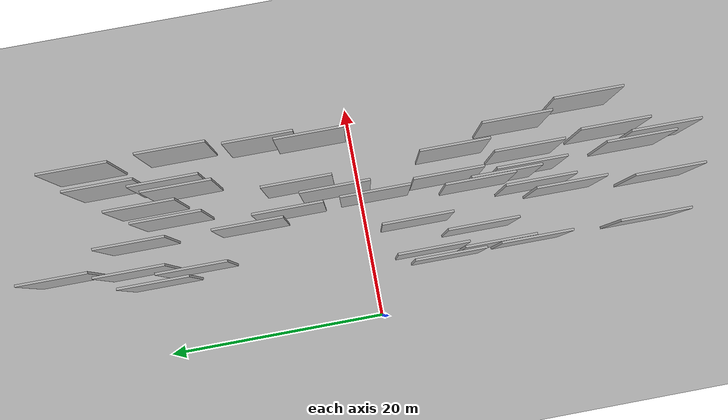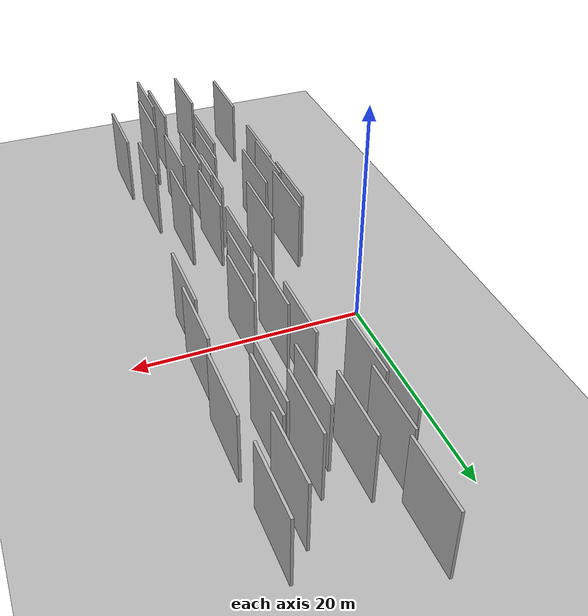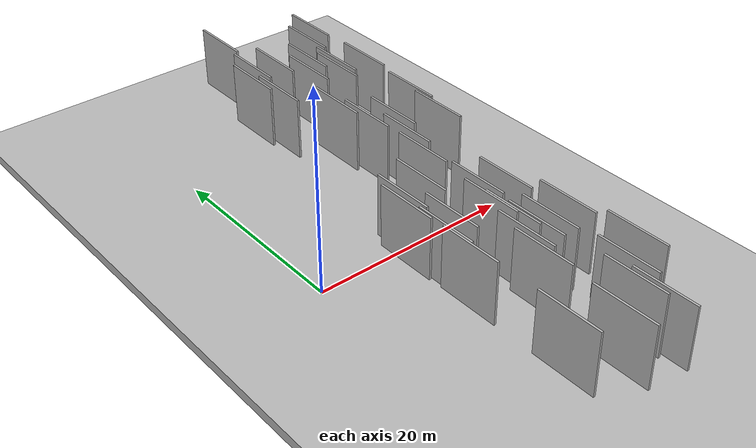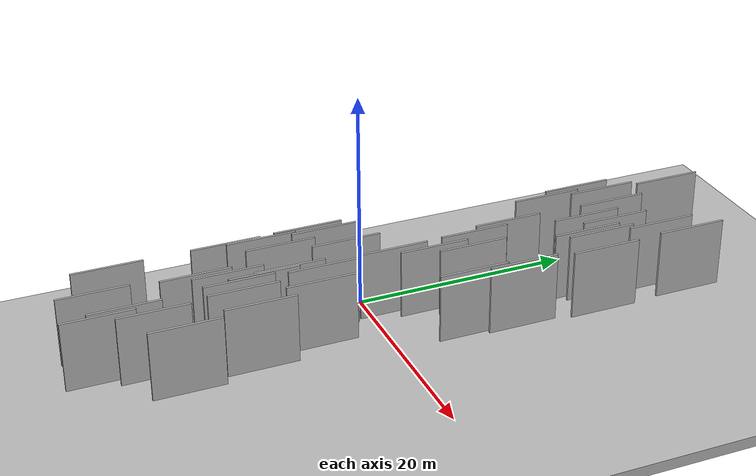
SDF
<?xml version="1.0" encoding="utf-8"?>

<sdf version="1.6">

   <world name="default">

      <gui fullscreen="0">

         <camera name="user_camera">

            <pose>-15 0 4.57585 0 0 0</pose>

            <view_controller>orbit</view_controller>

         </camera>

      </gui>

      <scene>

         <sky>

           <clouds>

             <speed>12</speed>

           </clouds>

         </sky>

         <ambient>0.4 0.4 0.4 1</ambient>

         <background>0.7 0.7 0.7 1</background>

         <shadows>1</shadows>

      </scene>

      <gravity>0 0 -9.8066</gravity>

      <magnetic_field>6e-06 2.3e-05 -4.2e-05</magnetic_field>

      <physics default="0" name="default_physics" type="ode">

         <ode>

            <solver>

               <type>quick</type>

               <iters>10</iters>

               <sor>1.0</sor>

               <use_dynamic_moi_rescaling>0</use_dynamic_moi_rescaling>

            </solver>

            <constraints>

               <cfm>0</cfm>

               <erp>0.2</erp>

               <contact_max_correcting_vel>100</contact_max_correcting_vel>

               <contact_surface_layer>0.001</contact_surface_layer>

            </constraints>

         </ode>

         <max_step_size>0.004</max_step_size>

         <real_time_factor>1</real_time_factor>

         <real_time_update_rate>250</real_time_update_rate>

      </physics>

      <light name="sun" type="directional">

         <cast_shadows>1</cast_shadows>

         <pose>0 0 10 0 0 0</pose>

         <diffuse>0.8 0.8 0.8 1</diffuse>

         <specular>0.2 0.2 0.2 1</specular>

         <attenuation>

            <range>1000</range>

            <constant>0.9</constant>

            <linear>0.01</linear>

            <quadratic>0.001</quadratic>

         </attenuation>

         <direction>-0.5 0.1 -0.9</direction>

      </light>

      <include>

         <name>ground_plane_1</name>

         <uri>model://HANNAS_ground_plane</uri>

         <pose>0 0 0  0 0 0</pose>

      </include>

      <include>

         <name>ground_plane_2</name>

         <uri>model://HANNAS_ground_plane</uri>

         <pose>100 0 0  0 0 0</pose>

      </include>

      <model name="HANNAS_wall_1">

         <static>1</static>

         <pose frame="">15.1076 -20.1467 5.0 0.000000 0.000000 1.570796</pose>

         <link name="link">

            <pose frame="">0 0 3.00 0 0 0</pose>

            <collision name="collision">

               <geometry>

                  <box>

                     <size>6.00 0.2 6.00</size>

                  </box>

               </geometry>

               <max_contacts>10</max_contacts>

               <surface>

                  <contact>

                     <ode/>

                  </contact>

                  <bounce/>

                  <friction>

                     <torsional>

                        <ode/>

                     </torsional>

                     <ode/>

                  </friction>

               </surface>

            </collision>

            <visual name="visual">

               <cast_shadows>0</cast_shadows>

               <geometry>

                  <box>

                     <size>6.00 0.2 6.00</size>

                  </box>

               </geometry>

               <material>

                  <script>

                     <uri>model://HANNAS_wall/materials/scripts</uri>

                     <uri>model://HANNAS_wall/materials/textures</uri>

                     <name>vrc/HANNAS_wall</name>

                  </script>

               </material>

            </visual>

            <self_collide>0</self_collide>

            <enable_wind>0</enable_wind>

            <kinematic>0</kinematic>

         </link>

      </model>

      <model name="HANNAS_wall_2">

         <static>1</static>

         <pose frame="">12.1999 5.2077 5.0 0.000000 0.000000 1.570796</pose>

         <link name="link">

            <pose frame="">0 0 3.00 0 0 0</pose>

            <collision name="collision">

               <geometry>

                  <box>

                     <size>6.00 0.2 6.00</size>

                  </box>

               </geometry>

               <max_contacts>10</max_contacts>

               <surface>

                  <contact>

                     <ode/>

                  </contact>

                  <bounce/>

                  <friction>

                     <torsional>

                        <ode/>

                     </torsional>

                     <ode/>

                  </friction>

               </surface>

            </collision>

            <visual name="visual">

               <cast_shadows>0</cast_shadows>

               <geometry>

                  <box>

                     <size>6.00 0.2 6.00</size>

                  </box>

               </geometry>

               <material>

                  <script>

                     <uri>model://HANNAS_wall/materials/scripts</uri>

                     <uri>model://HANNAS_wall/materials/textures</uri>

                     <name>vrc/HANNAS_wall</name>

                  </script>

               </material>

            </visual>

            <self_collide>0</self_collide>

            <enable_wind>0</enable_wind>

            <kinematic>0</kinematic>

         </link>

      </model>

      <model name="HANNAS_wall_3">

         <static>1</static>

         <pose frame="">10.1871 -14.3013 5.0 0.000000 0.000000 1.570796</pose>

         <link name="link">

            <pose frame="">0 0 3.00 0 0 0</pose>

            <collision name="collision">

               <geometry>

                  <box>

                     <size>6.00 0.2 6.00</size>

                  </box>

               </geometry>

               <max_contacts>10</max_contacts>

               <surface>

                  <contact>

                     <ode/>

                  </contact>

                  <bounce/>

                  <friction>

                     <torsional>

                        <ode/>

                     </torsional>

                     <ode/>

                  </friction>

               </surface>

            </collision>

            <visual name="visual">

               <cast_shadows>0</cast_shadows>

               <geometry>

                  <box>

                     <size>6.00 0.2 6.00</size>

                  </box>

               </geometry>

               <material>

                  <script>

                     <uri>model://HANNAS_wall/materials/scripts</uri>

                     <uri>model://HANNAS_wall/materials/textures</uri>

                     <name>vrc/HANNAS_wall</name>

                  </script>

               </material>

            </visual>

            <self_collide>0</self_collide>

            <enable_wind>0</enable_wind>

            <kinematic>0</kinematic>

         </link>

      </model>

      <model name="HANNAS_wall_4">

         <static>1</static>

         <pose frame="">16.6291 23.3080 5.0 0.000000 0.000000 1.570796</pose>

         <link name="link">

            <pose frame="">0 0 3.00 0 0 0</pose>

            <collision name="collision">

               <geometry>

                  <box>

                     <size>6.00 0.2 6.00</size>

                  </box>

               </geometry>

               <max_contacts>10</max_contacts>

               <surface>

                  <contact>

                     <ode/>

                  </contact>

                  <bounce/>

                  <friction>

                     <torsional>

                        <ode/>

                     </torsional>

                     <ode/>

                  </friction>

               </surface>

            </collision>

            <visual name="visual">

               <cast_shadows>0</cast_shadows>

               <geometry>

                  <box>

                     <size>6.00 0.2 6.00</size>

                  </box>

               </geometry>

               <material>

                  <script>

                     <uri>model://HANNAS_wall/materials/scripts</uri>

                     <uri>model://HANNAS_wall/materials/textures</uri>

                     <name>vrc/HANNAS_wall</name>

                  </script>

               </material>

            </visual>

            <self_collide>0</self_collide>

            <enable_wind>0</enable_wind>

            <kinematic>0</kinematic>

         </link>

      </model>

      <model name="HANNAS_wall_5">

         <static>1</static>

         <pose frame="">12.1281 -21.8119 5.0 0.000000 0.000000 1.570796</pose>

         <link name="link">

            <pose frame="">0 0 3.00 0 0 0</pose>

            <collision name="collision">

               <geometry>

                  <box>

                     <size>6.00 0.2 6.00</size>

                  </box>

               </geometry>

               <max_contacts>10</max_contacts>

               <surface>

                  <contact>

                     <ode/>

                  </contact>

                  <bounce/>

                  <friction>

                     <torsional>

                        <ode/>

                     </torsional>

                     <ode/>

                  </friction>

               </surface>

            </collision>

            <visual name="visual">

               <cast_shadows>0</cast_shadows>

               <geometry>

                  <box>

                     <size>6.00 0.2 6.00</size>

                  </box>

               </geometry>

               <material>

                  <script>

                     <uri>model://HANNAS_wall/materials/scripts</uri>

                     <uri>model://HANNAS_wall/materials/textures</uri>

                     <name>vrc/HANNAS_wall</name>

                  </script>

               </material>

            </visual>

            <self_collide>0</self_collide>

            <enable_wind>0</enable_wind>

            <kinematic>0</kinematic>

         </link>

      </model>

      <model name="HANNAS_wall_6">

         <static>1</static>

         <pose frame="">10.2048 -1.0611 5.0 0.000000 0.000000 1.570796</pose>

         <link name="link">

            <pose frame="">0 0 3.00 0 0 0</pose>

            <collision name="collision">

               <geometry>

                  <box>

                     <size>6.00 0.2 6.00</size>

                  </box>

               </geometry>

               <max_contacts>10</max_contacts>

               <surface>

                  <contact>

                     <ode/>

                  </contact>

                  <bounce/>

                  <friction>

                     <torsional>

                        <ode/>

                     </torsional>

                     <ode/>

                  </friction>

               </surface>

            </collision>

            <visual name="visual">

               <cast_shadows>0</cast_shadows>

               <geometry>

                  <box>

                     <size>6.00 0.2 6.00</size>

                  </box>

               </geometry>

               <material>

                  <script>

                     <uri>model://HANNAS_wall/materials/scripts</uri>

                     <uri>model://HANNAS_wall/materials/textures</uri>

                     <name>vrc/HANNAS_wall</name>

                  </script>

               </material>

            </visual>

            <self_collide>0</self_collide>

            <enable_wind>0</enable_wind>

            <kinematic>0</kinematic>

         </link>

      </model>

      <model name="HANNAS_wall_7">

         <static>1</static>

         <pose frame="">3.9544 -6.2248 5.0 0.000000 0.000000 1.570796</pose>

         <link name="link">

            <pose frame="">0 0 3.00 0 0 0</pose>

            <collision name="collision">

               <geometry>

                  <box>

                     <size>6.00 0.2 6.00</size>

                  </box>

               </geometry>

               <max_contacts>10</max_contacts>

               <surface>

                  <contact>

                     <ode/>

                  </contact>

                  <bounce/>

                  <friction>

                     <torsional>

                        <ode/>

                     </torsional>

                     <ode/>

                  </friction>

               </surface>

            </collision>

            <visual name="visual">

               <cast_shadows>0</cast_shadows>

               <geometry>

                  <box>

                     <size>6.00 0.2 6.00</size>

                  </box>

               </geometry>

               <material>

                  <script>

                     <uri>model://HANNAS_wall/materials/scripts</uri>

                     <uri>model://HANNAS_wall/materials/textures</uri>

                     <name>vrc/HANNAS_wall</name>

                  </script>

               </material>

            </visual>

            <self_collide>0</self_collide>

            <enable_wind>0</enable_wind>

            <kinematic>0</kinematic>

         </link>

      </model>

      <model name="HANNAS_wall_8">

         <static>1</static>

         <pose frame="">14.2728 16.0527 5.0 0.000000 0.000000 1.570796</pose>

         <link name="link">

            <pose frame="">0 0 3.00 0 0 0</pose>

            <collision name="collision">

               <geometry>

                  <box>

                     <size>6.00 0.2 6.00</size>

                  </box>

               </geometry>

               <max_contacts>10</max_contacts>

               <surface>

                  <contact>

                     <ode/>

                  </contact>

                  <bounce/>

                  <friction>

                     <torsional>

                        <ode/>

                     </torsional>

                     <ode/>

                  </friction>

               </surface>

            </collision>

            <visual name="visual">

               <cast_shadows>0</cast_shadows>

               <geometry>

                  <box>

                     <size>6.00 0.2 6.00</size>

                  </box>

               </geometry>

               <material>

                  <script>

                     <uri>model://HANNAS_wall/materials/scripts</uri>

                     <uri>model://HANNAS_wall/materials/textures</uri>

                     <name>vrc/HANNAS_wall</name>

                  </script>

               </material>

            </visual>

            <self_collide>0</self_collide>

            <enable_wind>0</enable_wind>

            <kinematic>0</kinematic>

         </link>

      </model>

      <model name="HANNAS_wall_9">

         <static>1</static>

         <pose frame="">4.6797 -4.9293 5.0 0.000000 0.000000 1.570796</pose>

         <link name="link">

            <pose frame="">0 0 3.00 0 0 0</pose>

            <collision name="collision">

               <geometry>

                  <box>

                     <size>6.00 0.2 6.00</size>

                  </box>

               </geometry>

               <max_contacts>10</max_contacts>

               <surface>

                  <contact>

                     <ode/>

                  </contact>

                  <bounce/>

                  <friction>

                     <torsional>

                        <ode/>

                     </torsional>

                     <ode/>

                  </friction>

               </surface>

            </collision>

            <visual name="visual">

               <cast_shadows>0</cast_shadows>

               <geometry>

                  <box>

                     <size>6.00 0.2 6.00</size>

                  </box>

               </geometry>

               <material>

                  <script>

                     <uri>model://HANNAS_wall/materials/scripts</uri>

                     <uri>model://HANNAS_wall/materials/textures</uri>

                     <name>vrc/HANNAS_wall</name>

                  </script>

               </material>

            </visual>

            <self_collide>0</self_collide>

            <enable_wind>0</enable_wind>

            <kinematic>0</kinematic>

         </link>

      </model>

      <model name="HANNAS_wall_10">

         <static>1</static>

         <pose frame="">14.1729 -13.8477 5.0 0.000000 0.000000 1.570796</pose>

         <link name="link">

            <pose frame="">0 0 3.00 0 0 0</pose>

            <collision name="collision">

               <geometry>

                  <box>

                     <size>6.00 0.2 6.00</size>

                  </box>

               </geometry>

               <max_contacts>10</max_contacts>

               <surface>

                  <contact>

                     <ode/>

                  </contact>

                  <bounce/>

                  <friction>

                     <torsional>

                        <ode/>

                     </torsional>

                     <ode/>

                  </friction>

               </surface>

            </collision>

            <visual name="visual">

               <cast_shadows>0</cast_shadows>

               <geometry>

                  <box>

                     <size>6.00 0.2 6.00</size>

                  </box>

               </geometry>

               <material>

                  <script>

                     <uri>model://HANNAS_wall/materials/scripts</uri>

                     <uri>model://HANNAS_wall/materials/textures</uri>

                     <name>vrc/HANNAS_wall</name>

                  </script>

               </material>

            </visual>

            <self_collide>0</self_collide>

            <enable_wind>0</enable_wind>

            <kinematic>0</kinematic>

         </link>

      </model>

      <model name="HANNAS_wall_11">

         <static>1</static>

         <pose frame="">11.2247 -25.9429 5.0 0.000000 0.000000 1.570796</pose>

         <link name="link">

            <pose frame="">0 0 3.00 0 0 0</pose>

            <collision name="collision">

               <geometry>

                  <box>

                     <size>6.00 0.2 6.00</size>

                  </box>

               </geometry>

               <max_contacts>10</max_contacts>

               <surface>

                  <contact>

                     <ode/>

                  </contact>

                  <bounce/>

                  <friction>

                     <torsional>

                        <ode/>

                     </torsional>

                     <ode/>

                  </friction>

               </surface>

            </collision>

            <visual name="visual">

               <cast_shadows>0</cast_shadows>

               <geometry>

                  <box>

                     <size>6.00 0.2 6.00</size>

                  </box>

               </geometry>

               <material>

                  <script>

                     <uri>model://HANNAS_wall/materials/scripts</uri>

                     <uri>model://HANNAS_wall/materials/textures</uri>

                     <name>vrc/HANNAS_wall</name>

                  </script>

               </material>

            </visual>

            <self_collide>0</self_collide>

            <enable_wind>0</enable_wind>

            <kinematic>0</kinematic>

         </link>

      </model>

      <model name="HANNAS_wall_12">

         <static>1</static>

         <pose frame="">12.5428 18.3019 5.0 0.000000 0.000000 1.570796</pose>

         <link name="link">

            <pose frame="">0 0 3.00 0 0 0</pose>

            <collision name="collision">

               <geometry>

                  <box>

                     <size>6.00 0.2 6.00</size>

                  </box>

               </geometry>

               <max_contacts>10</max_contacts>

               <surface>

                  <contact>

                     <ode/>

                  </contact>

                  <bounce/>

                  <friction>

                     <torsional>

                        <ode/>

                     </torsional>

                     <ode/>

                  </friction>

               </surface>

            </collision>

            <visual name="visual">

               <cast_shadows>0</cast_shadows>

               <geometry>

                  <box>

                     <size>6.00 0.2 6.00</size>

                  </box>

               </geometry>

               <material>

                  <script>

                     <uri>model://HANNAS_wall/materials/scripts</uri>

                     <uri>model://HANNAS_wall/materials/textures</uri>

                     <name>vrc/HANNAS_wall</name>

                  </script>

               </material>

            </visual>

            <self_collide>0</self_collide>

            <enable_wind>0</enable_wind>

            <kinematic>0</kinematic>

         </link>

      </model>

      <model name="HANNAS_wall_13">

         <static>1</static>

         <pose frame="">12.7987 -8.3008 5.0 0.000000 0.000000 1.570796</pose>

         <link name="link">

            <pose frame="">0 0 3.00 0 0 0</pose>

            <collision name="collision">

               <geometry>

                  <box>

                     <size>6.00 0.2 6.00</size>

                  </box>

               </geometry>

               <max_contacts>10</max_contacts>

               <surface>

                  <contact>

                     <ode/>

                  </contact>

                  <bounce/>

                  <friction>

                     <torsional>

                        <ode/>

                     </torsional>

                     <ode/>

                  </friction>

               </surface>

            </collision>

            <visual name="visual">

               <cast_shadows>0</cast_shadows>

               <geometry>

                  <box>

                     <size>6.00 0.2 6.00</size>

                  </box>

               </geometry>

               <material>

                  <script>

                     <uri>model://HANNAS_wall/materials/scripts</uri>

                     <uri>model://HANNAS_wall/materials/textures</uri>

                     <name>vrc/HANNAS_wall</name>

                  </script>

               </material>

            </visual>

            <self_collide>0</self_collide>

            <enable_wind>0</enable_wind>

            <kinematic>0</kinematic>

         </link>

      </model>

      <model name="HANNAS_wall_14">

         <static>1</static>

         <pose frame="">9.8481 -12.0889 5.0 0.000000 0.000000 1.570796</pose>

         <link name="link">

            <pose frame="">0 0 3.00 0 0 0</pose>

            <collision name="collision">

               <geometry>

                  <box>

                     <size>6.00 0.2 6.00</size>

                  </box>

               </geometry>

               <max_contacts>10</max_contacts>

               <surface>

                  <contact>

                     <ode/>

                  </contact>

                  <bounce/>

                  <friction>

                     <torsional>

                        <ode/>

                     </torsional>

                     <ode/>

                  </friction>

               </surface>

            </collision>

            <visual name="visual">

               <cast_shadows>0</cast_shadows>

               <geometry>

                  <box>

                     <size>6.00 0.2 6.00</size>

                  </box>

               </geometry>

               <material>

                  <script>

                     <uri>model://HANNAS_wall/materials/scripts</uri>

                     <uri>model://HANNAS_wall/materials/textures</uri>

                     <name>vrc/HANNAS_wall</name>

                  </script>

               </material>

            </visual>

            <self_collide>0</self_collide>

            <enable_wind>0</enable_wind>

            <kinematic>0</kinematic>

         </link>

      </model>

      <model name="HANNAS_wall_15">

         <static>1</static>

         <pose frame="">6.7236 14.8359 5.0 0.000000 0.000000 1.570796</pose>

         <link name="link">

            <pose frame="">0 0 3.00 0 0 0</pose>

            <collision name="collision">

               <geometry>

                  <box>

                     <size>6.00 0.2 6.00</size>

                  </box>

               </geometry>

               <max_contacts>10</max_contacts>

               <surface>

                  <contact>

                     <ode/>

                  </contact>

                  <bounce/>

                  <friction>

                     <torsional>

                        <ode/>

                     </torsional>

                     <ode/>

                  </friction>

               </surface>

            </collision>

            <visual name="visual">

               <cast_shadows>0</cast_shadows>

               <geometry>

                  <box>

                     <size>6.00 0.2 6.00</size>

                  </box>

               </geometry>

               <material>

                  <script>

                     <uri>model://HANNAS_wall/materials/scripts</uri>

                     <uri>model://HANNAS_wall/materials/textures</uri>

                     <name>vrc/HANNAS_wall</name>

                  </script>

               </material>

            </visual>

            <self_collide>0</self_collide>

            <enable_wind>0</enable_wind>

            <kinematic>0</kinematic>

         </link>

      </model>

      <model name="HANNAS_wall_16">

         <static>1</static>

         <pose frame="">11.1813 2.1592 5.0 0.000000 0.000000 1.570796</pose>

         <link name="link">

            <pose frame="">0 0 3.00 0 0 0</pose>

            <collision name="collision">

               <geometry>

                  <box>

                     <size>6.00 0.2 6.00</size>

                  </box>

               </geometry>

               <max_contacts>10</max_contacts>

               <surface>

                  <contact>

                     <ode/>

                  </contact>

                  <bounce/>

                  <friction>

                     <torsional>

                        <ode/>

                     </torsional>

                     <ode/>

                  </friction>

               </surface>

            </collision>

            <visual name="visual">

               <cast_shadows>0</cast_shadows>

               <geometry>

                  <box>

                     <size>6.00 0.2 6.00</size>

                  </box>

               </geometry>

               <material>

                  <script>

                     <uri>model://HANNAS_wall/materials/scripts</uri>

                     <uri>model://HANNAS_wall/materials/textures</uri>

                     <name>vrc/HANNAS_wall</name>

                  </script>

               </material>

            </visual>

            <self_collide>0</self_collide>

            <enable_wind>0</enable_wind>

            <kinematic>0</kinematic>

         </link>

      </model>

      <model name="HANNAS_wall_17">

         <static>1</static>

         <pose frame="">16.8694 15.0728 5.0 0.000000 0.000000 1.570796</pose>

         <link name="link">

            <pose frame="">0 0 3.00 0 0 0</pose>

            <collision name="collision">

               <geometry>

                  <box>

                     <size>6.00 0.2 6.00</size>

                  </box>

               </geometry>

               <max_contacts>10</max_contacts>

               <surface>

                  <contact>

                     <ode/>

                  </contact>

                  <bounce/>

                  <friction>

                     <torsional>

                        <ode/>

                     </torsional>

                     <ode/>

                  </friction>

               </surface>

            </collision>

            <visual name="visual">

               <cast_shadows>0</cast_shadows>

               <geometry>

                  <box>

                     <size>6.00 0.2 6.00</size>

                  </box>

               </geometry>

               <material>

                  <script>

                     <uri>model://HANNAS_wall/materials/scripts</uri>

                     <uri>model://HANNAS_wall/materials/textures</uri>

                     <name>vrc/HANNAS_wall</name>

                  </script>

               </material>

            </visual>

            <self_collide>0</self_collide>

            <enable_wind>0</enable_wind>

            <kinematic>0</kinematic>

         </link>

      </model>

      <model name="HANNAS_wall_18">

         <static>1</static>

         <pose frame="">11.2054 16.2878 5.0 0.000000 0.000000 1.570796</pose>

         <link name="link">

            <pose frame="">0 0 3.00 0 0 0</pose>

            <collision name="collision">

               <geometry>

                  <box>

                     <size>6.00 0.2 6.00</size>

                  </box>

               </geometry>

               <max_contacts>10</max_contacts>

               <surface>

                  <contact>

                     <ode/>

                  </contact>

                  <bounce/>

                  <friction>

                     <torsional>

                        <ode/>

                     </torsional>

                     <ode/>

                  </friction>

               </surface>

            </collision>

            <visual name="visual">

               <cast_shadows>0</cast_shadows>

               <geometry>

                  <box>

                     <size>6.00 0.2 6.00</size>

                  </box>

               </geometry>

               <material>

                  <script>

                     <uri>model://HANNAS_wall/materials/scripts</uri>

                     <uri>model://HANNAS_wall/materials/textures</uri>

                     <name>vrc/HANNAS_wall</name>

                  </script>

               </material>

            </visual>

            <self_collide>0</self_collide>

            <enable_wind>0</enable_wind>

            <kinematic>0</kinematic>

         </link>

      </model>

      <model name="HANNAS_wall_19">

         <static>1</static>

         <pose frame="">10.6849 -23.7205 5.0 0.000000 0.000000 1.570796</pose>

         <link name="link">

            <pose frame="">0 0 3.00 0 0 0</pose>

            <collision name="collision">

               <geometry>

                  <box>

                     <size>6.00 0.2 6.00</size>

                  </box>

               </geometry>

               <max_contacts>10</max_contacts>

               <surface>

                  <contact>

                     <ode/>

                  </contact>

                  <bounce/>

                  <friction>

                     <torsional>

                        <ode/>

                     </torsional>

                     <ode/>

                  </friction>

               </surface>

            </collision>

            <visual name="visual">

               <cast_shadows>0</cast_shadows>

               <geometry>

                  <box>

                     <size>6.00 0.2 6.00</size>

                  </box>

               </geometry>

               <material>

                  <script>

                     <uri>model://HANNAS_wall/materials/scripts</uri>

                     <uri>model://HANNAS_wall/materials/textures</uri>

                     <name>vrc/HANNAS_wall</name>

                  </script>

               </material>

            </visual>

            <self_collide>0</self_collide>

            <enable_wind>0</enable_wind>

            <kinematic>0</kinematic>

         </link>

      </model>

      <model name="HANNAS_wall_20">

         <static>1</static>

         <pose frame="">9.6404 19.5847 5.0 0.000000 0.000000 1.570796</pose>

         <link name="link">

            <pose frame="">0 0 3.00 0 0 0</pose>

            <collision name="collision">

               <geometry>

                  <box>

                     <size>6.00 0.2 6.00</size>

                  </box>

               </geometry>

               <max_contacts>10</max_contacts>

               <surface>

                  <contact>

                     <ode/>

                  </contact>

                  <bounce/>

                  <friction>

                     <torsional>

                        <ode/>

                     </torsional>

                     <ode/>

                  </friction>

               </surface>

            </collision>

            <visual name="visual">

               <cast_shadows>0</cast_shadows>

               <geometry>

                  <box>

                     <size>6.00 0.2 6.00</size>

                  </box>

               </geometry>

               <material>

                  <script>

                     <uri>model://HANNAS_wall/materials/scripts</uri>

                     <uri>model://HANNAS_wall/materials/textures</uri>

                     <name>vrc/HANNAS_wall</name>

                  </script>

               </material>

            </visual>

            <self_collide>0</self_collide>

            <enable_wind>0</enable_wind>

            <kinematic>0</kinematic>

         </link>

      </model>

      <model name="HANNAS_wall_21">

         <static>1</static>

         <pose frame="">8.6431 -14.7393 5.0 0.000000 0.000000 1.570796</pose>

         <link name="link">

            <pose frame="">0 0 3.00 0 0 0</pose>

            <collision name="collision">

               <geometry>

                  <box>

                     <size>6.00 0.2 6.00</size>

                  </box>

               </geometry>

               <max_contacts>10</max_contacts>

               <surface>

                  <contact>

                     <ode/>

                  </contact>

                  <bounce/>

                  <friction>

                     <torsional>

                        <ode/>

                     </torsional>

                     <ode/>

                  </friction>

               </surface>

            </collision>

            <visual name="visual">

               <cast_shadows>0</cast_shadows>

               <geometry>

                  <box>

                     <size>6.00 0.2 6.00</size>

                  </box>

               </geometry>

               <material>

                  <script>

                     <uri>model://HANNAS_wall/materials/scripts</uri>

                     <uri>model://HANNAS_wall/materials/textures</uri>

                     <name>vrc/HANNAS_wall</name>

                  </script>

               </material>

            </visual>

            <self_collide>0</self_collide>

            <enable_wind>0</enable_wind>

            <kinematic>0</kinematic>

         </link>

      </model>

      <model name="HANNAS_wall_22">

         <static>1</static>

         <pose frame="">10.5808 -7.3412 5.0 0.000000 0.000000 1.570796</pose>

         <link name="link">

            <pose frame="">0 0 3.00 0 0 0</pose>

            <collision name="collision">

               <geometry>

                  <box>

                     <size>6.00 0.2 6.00</size>

                  </box>

               </geometry>

               <max_contacts>10</max_contacts>

               <surface>

                  <contact>

                     <ode/>

                  </contact>

                  <bounce/>

                  <friction>

                     <torsional>

                        <ode/>

                     </torsional>

                     <ode/>

                  </friction>

               </surface>

            </collision>

            <visual name="visual">

               <cast_shadows>0</cast_shadows>

               <geometry>

                  <box>

                     <size>6.00 0.2 6.00</size>

                  </box>

               </geometry>

               <material>

                  <script>

                     <uri>model://HANNAS_wall/materials/scripts</uri>

                     <uri>model://HANNAS_wall/materials/textures</uri>

                     <name>vrc/HANNAS_wall</name>

                  </script>

               </material>

            </visual>

            <self_collide>0</self_collide>

            <enable_wind>0</enable_wind>

            <kinematic>0</kinematic>

         </link>

      </model>

      <model name="HANNAS_wall_23">

         <static>1</static>

         <pose frame="">13.6193 15.0661 5.0 0.000000 0.000000 1.570796</pose>

         <link name="link">

            <pose frame="">0 0 3.00 0 0 0</pose>

            <collision name="collision">

               <geometry>

                  <box>

                     <size>6.00 0.2 6.00</size>

                  </box>

               </geometry>

               <max_contacts>10</max_contacts>

               <surface>

                  <contact>

                     <ode/>

                  </contact>

                  <bounce/>

                  <friction>

                     <torsional>

                        <ode/>

                     </torsional>

                     <ode/>

                  </friction>

               </surface>

            </collision>

            <visual name="visual">

               <cast_shadows>0</cast_shadows>

               <geometry>

                  <box>

                     <size>6.00 0.2 6.00</size>

                  </box>

               </geometry>

               <material>

                  <script>

                     <uri>model://HANNAS_wall/materials/scripts</uri>

                     <uri>model://HANNAS_wall/materials/textures</uri>

                     <name>vrc/HANNAS_wall</name>

                  </script>

               </material>

            </visual>

            <self_collide>0</self_collide>

            <enable_wind>0</enable_wind>

            <kinematic>0</kinematic>

         </link>

      </model>

      <model name="HANNAS_wall_24">

         <static>1</static>

         <pose frame="">7.8483 26.1774 5.0 0.000000 0.000000 1.570796</pose>

         <link name="link">

            <pose frame="">0 0 3.00 0 0 0</pose>

            <collision name="collision">

               <geometry>

                  <box>

                     <size>6.00 0.2 6.00</size>

                  </box>

               </geometry>

               <max_contacts>10</max_contacts>

               <surface>

                  <contact>

                     <ode/>

                  </contact>

                  <bounce/>

                  <friction>

                     <torsional>

                        <ode/>

                     </torsional>

                     <ode/>

                  </friction>

               </surface>

            </collision>

            <visual name="visual">

               <cast_shadows>0</cast_shadows>

               <geometry>

                  <box>

                     <size>6.00 0.2 6.00</size>

                  </box>

               </geometry>

               <material>

                  <script>

                     <uri>model://HANNAS_wall/materials/scripts</uri>

                     <uri>model://HANNAS_wall/materials/textures</uri>

                     <name>vrc/HANNAS_wall</name>

                  </script>

               </material>

            </visual>

            <self_collide>0</self_collide>

            <enable_wind>0</enable_wind>

            <kinematic>0</kinematic>

         </link>

      </model>

      <model name="HANNAS_wall_25">

         <static>1</static>

         <pose frame="">7.9813 -17.1811 5.0 0.000000 0.000000 1.570796</pose>

         <link name="link">

            <pose frame="">0 0 3.00 0 0 0</pose>

            <collision name="collision">

               <geometry>

                  <box>

                     <size>6.00 0.2 6.00</size>

                  </box>

               </geometry>

               <max_contacts>10</max_contacts>

               <surface>

                  <contact>

                     <ode/>

                  </contact>

                  <bounce/>

                  <friction>

                     <torsional>

                        <ode/>

                     </torsional>

                     <ode/>

                  </friction>

               </surface>

            </collision>

            <visual name="visual">

               <cast_shadows>0</cast_shadows>

               <geometry>

                  <box>

                     <size>6.00 0.2 6.00</size>

                  </box>

               </geometry>

               <material>

                  <script>

                     <uri>model://HANNAS_wall/materials/scripts</uri>

                     <uri>model://HANNAS_wall/materials/textures</uri>

                     <name>vrc/HANNAS_wall</name>

                  </script>

               </material>

            </visual>

            <self_collide>0</self_collide>

            <enable_wind>0</enable_wind>

            <kinematic>0</kinematic>

         </link>

      </model>

      <model name="HANNAS_wall_26">

         <static>1</static>

         <pose frame="">4.2748 -10.4588 5.0 0.000000 0.000000 1.570796</pose>

         <link name="link">

            <pose frame="">0 0 3.00 0 0 0</pose>

            <collision name="collision">

               <geometry>

                  <box>

                     <size>6.00 0.2 6.00</size>

                  </box>

               </geometry>

               <max_contacts>10</max_contacts>

               <surface>

                  <contact>

                     <ode/>

                  </contact>

                  <bounce/>

                  <friction>

                     <torsional>

                        <ode/>

                     </torsional>

                     <ode/>

                  </friction>

               </surface>

            </collision>

            <visual name="visual">

               <cast_shadows>0</cast_shadows>

               <geometry>

                  <box>

                     <size>6.00 0.2 6.00</size>

                  </box>

               </geometry>

               <material>

                  <script>

                     <uri>model://HANNAS_wall/materials/scripts</uri>

                     <uri>model://HANNAS_wall/materials/textures</uri>

                     <name>vrc/HANNAS_wall</name>

                  </script>

               </material>

            </visual>

            <self_collide>0</self_collide>

            <enable_wind>0</enable_wind>

            <kinematic>0</kinematic>

         </link>

      </model>

      <model name="HANNAS_wall_27">

         <static>1</static>

         <pose frame="">16.4168 7.7540 5.0 0.000000 0.000000 1.570796</pose>

         <link name="link">

            <pose frame="">0 0 3.00 0 0 0</pose>

            <collision name="collision">

               <geometry>

                  <box>

                     <size>6.00 0.2 6.00</size>

                  </box>

               </geometry>

               <max_contacts>10</max_contacts>

               <surface>

                  <contact>

                     <ode/>

                  </contact>

                  <bounce/>

                  <friction>

                     <torsional>

                        <ode/>

                     </torsional>

                     <ode/>

                  </friction>

               </surface>

            </collision>

            <visual name="visual">

               <cast_shadows>0</cast_shadows>

               <geometry>

                  <box>

                     <size>6.00 0.2 6.00</size>

                  </box>

               </geometry>

               <material>

                  <script>

                     <uri>model://HANNAS_wall/materials/scripts</uri>

                     <uri>model://HANNAS_wall/materials/textures</uri>

                     <name>vrc/HANNAS_wall</name>

                  </script>

               </material>

            </visual>

            <self_collide>0</self_collide>

            <enable_wind>0</enable_wind>

            <kinematic>0</kinematic>

         </link>

      </model>

      <model name="HANNAS_wall_28">

         <static>1</static>

         <pose frame="">5.9140 -9.3452 5.0 0.000000 0.000000 1.570796</pose>

         <link name="link">

            <pose frame="">0 0 3.00 0 0 0</pose>

            <collision name="collision">

               <geometry>

                  <box>

                     <size>6.00 0.2 6.00</size>

                  </box>

               </geometry>

               <max_contacts>10</max_contacts>

               <surface>

                  <contact>

                     <ode/>

                  </contact>

                  <bounce/>

                  <friction>

                     <torsional>

                        <ode/>

                     </torsional>

                     <ode/>

                  </friction>

               </surface>

            </collision>

            <visual name="visual">

               <cast_shadows>0</cast_shadows>

               <geometry>

                  <box>

                     <size>6.00 0.2 6.00</size>

                  </box>

               </geometry>

               <material>

                  <script>

                     <uri>model://HANNAS_wall/materials/scripts</uri>

                     <uri>model://HANNAS_wall/materials/textures</uri>

                     <name>vrc/HANNAS_wall</name>

                  </script>

               </material>

            </visual>

            <self_collide>0</self_collide>

            <enable_wind>0</enable_wind>

            <kinematic>0</kinematic>

         </link>

      </model>

      <model name="HANNAS_wall_29">

         <static>1</static>

         <pose frame="">6.0825 18.0786 5.0 0.000000 0.000000 1.570796</pose>

         <link name="link">

            <pose frame="">0 0 3.00 0 0 0</pose>

            <collision name="collision">

               <geometry>

                  <box>

                     <size>6.00 0.2 6.00</size>

                  </box>

               </geometry>

               <max_contacts>10</max_contacts>

               <surface>

                  <contact>

                     <ode/>

                  </contact>

                  <bounce/>

                  <friction>

                     <torsional>

                        <ode/>

                     </torsional>

                     <ode/>

                  </friction>

               </surface>

            </collision>

            <visual name="visual">

               <cast_shadows>0</cast_shadows>

               <geometry>

                  <box>

                     <size>6.00 0.2 6.00</size>

                  </box>

               </geometry>

               <material>

                  <script>

                     <uri>model://HANNAS_wall/materials/scripts</uri>

                     <uri>model://HANNAS_wall/materials/textures</uri>

                     <name>vrc/HANNAS_wall</name>

                  </script>

               </material>

            </visual>

            <self_collide>0</self_collide>

            <enable_wind>0</enable_wind>

            <kinematic>0</kinematic>

         </link>

      </model>

      <model name="HANNAS_wall_30">

         <static>1</static>

         <pose frame="">4.0646 -23.3976 5.0 0.000000 0.000000 1.570796</pose>

         <link name="link">

            <pose frame="">0 0 3.00 0 0 0</pose>

            <collision name="collision">

               <geometry>

                  <box>

                     <size>6.00 0.2 6.00</size>

                  </box>

               </geometry>

               <max_contacts>10</max_contacts>

               <surface>

                  <contact>

                     <ode/>

                  </contact>

                  <bounce/>

                  <friction>

                     <torsional>

                        <ode/>

                     </torsional>

                     <ode/>

                  </friction>

               </surface>

            </collision>

            <visual name="visual">

               <cast_shadows>0</cast_shadows>

               <geometry>

                  <box>

                     <size>6.00 0.2 6.00</size>

                  </box>

               </geometry>

               <material>

                  <script>

                     <uri>model://HANNAS_wall/materials/scripts</uri>

                     <uri>model://HANNAS_wall/materials/textures</uri>

                     <name>vrc/HANNAS_wall</name>

                  </script>

               </material>

            </visual>

            <self_collide>0</self_collide>

            <enable_wind>0</enable_wind>

            <kinematic>0</kinematic>

         </link>

      </model>

      <model name="HANNAS_wall_31">

         <static>1</static>

         <pose frame="">7.3360 19.9078 5.0 0.000000 0.000000 1.570796</pose>

         <link name="link">

            <pose frame="">0 0 3.00 0 0 0</pose>

            <collision name="collision">

               <geometry>

                  <box>

                     <size>6.00 0.2 6.00</size>

                  </box>

               </geometry>

               <max_contacts>10</max_contacts>

               <surface>

                  <contact>

                     <ode/>

                  </contact>

                  <bounce/>

                  <friction>

                     <torsional>

                        <ode/>

                     </torsional>

                     <ode/>

                  </friction>

               </surface>

            </collision>

            <visual name="visual">

               <cast_shadows>0</cast_shadows>

               <geometry>

                  <box>

                     <size>6.00 0.2 6.00</size>

                  </box>

               </geometry>

               <material>

                  <script>

                     <uri>model://HANNAS_wall/materials/scripts</uri>

                     <uri>model://HANNAS_wall/materials/textures</uri>

                     <name>vrc/HANNAS_wall</name>

                  </script>

               </material>

            </visual>

            <self_collide>0</self_collide>

            <enable_wind>0</enable_wind>

            <kinematic>0</kinematic>

         </link>

      </model>

      <model name="HANNAS_wall_32">

         <static>1</static>

         <pose frame="">9.6402 -9.8427 5.0 0.000000 0.000000 1.570796</pose>

         <link name="link">

            <pose frame="">0 0 3.00 0 0 0</pose>

            <collision name="collision">

               <geometry>

                  <box>

                     <size>6.00 0.2 6.00</size>

                  </box>

               </geometry>

               <max_contacts>10</max_contacts>

               <surface>

                  <contact>

                     <ode/>

                  </contact>

                  <bounce/>

                  <friction>

                     <torsional>

                        <ode/>

                     </torsional>

                     <ode/>

                  </friction>

               </surface>

            </collision>

            <visual name="visual">

               <cast_shadows>0</cast_shadows>

               <geometry>

                  <box>

                     <size>6.00 0.2 6.00</size>

                  </box>

               </geometry>

               <material>

                  <script>

                     <uri>model://HANNAS_wall/materials/scripts</uri>

                     <uri>model://HANNAS_wall/materials/textures</uri>

                     <name>vrc/HANNAS_wall</name>

                  </script>

               </material>

            </visual>

            <self_collide>0</self_collide>

            <enable_wind>0</enable_wind>

            <kinematic>0</kinematic>

         </link>

      </model>

      <model name="HANNAS_wall_33">

         <static>1</static>

         <pose frame="">9.4406 9.7538 5.0 0.000000 0.000000 1.570796</pose>

         <link name="link">

            <pose frame="">0 0 3.00 0 0 0</pose>

            <collision name="collision">

               <geometry>

                  <box>

                     <size>6.00 0.2 6.00</size>

                  </box>

               </geometry>

               <max_contacts>10</max_contacts>

               <surface>

                  <contact>

                     <ode/>

                  </contact>

                  <bounce/>

                  <friction>

                     <torsional>

                        <ode/>

                     </torsional>

                     <ode/>

                  </friction>

               </surface>

            </collision>

            <visual name="visual">

               <cast_shadows>0</cast_shadows>

               <geometry>

                  <box>

                     <size>6.00 0.2 6.00</size>

                  </box>

               </geometry>

               <material>

                  <script>

                     <uri>model://HANNAS_wall/materials/scripts</uri>

                     <uri>model://HANNAS_wall/materials/textures</uri>

                     <name>vrc/HANNAS_wall</name>

                  </script>

               </material>

            </visual>

            <self_collide>0</self_collide>

            <enable_wind>0</enable_wind>

            <kinematic>0</kinematic>

         </link>

      </model>

      <model name="HANNAS_wall_34">

         <static>1</static>

         <pose frame="">4.0615 -13.4484 5.0 0.000000 0.000000 1.570796</pose>

         <link name="link">

            <pose frame="">0 0 3.00 0 0 0</pose>

            <collision name="collision">

               <geometry>

                  <box>

                     <size>6.00 0.2 6.00</size>

                  </box>

               </geometry>

               <max_contacts>10</max_contacts>

               <surface>

                  <contact>

                     <ode/>

                  </contact>

                  <bounce/>

                  <friction>

                     <torsional>

                        <ode/>

                     </torsional>

                     <ode/>

                  </friction>

               </surface>

            </collision>

            <visual name="visual">

               <cast_shadows>0</cast_shadows>

               <geometry>

                  <box>

                     <size>6.00 0.2 6.00</size>

                  </box>

               </geometry>

               <material>

                  <script>

                     <uri>model://HANNAS_wall/materials/scripts</uri>

                     <uri>model://HANNAS_wall/materials/textures</uri>

                     <name>vrc/HANNAS_wall</name>

                  </script>

               </material>

            </visual>

            <self_collide>0</self_collide>

            <enable_wind>0</enable_wind>

            <kinematic>0</kinematic>

         </link>

      </model>

      <model name="HANNAS_wall_35">

         <static>1</static>

         <pose frame="">7.5322 -25.4200 5.0 0.000000 0.000000 1.570796</pose>

         <link name="link">

            <pose frame="">0 0 3.00 0 0 0</pose>

            <collision name="collision">

               <geometry>

                  <box>

                     <size>6.00 0.2 6.00</size>

                  </box>

               </geometry>

               <max_contacts>10</max_contacts>

               <surface>

                  <contact>

                     <ode/>

                  </contact>

                  <bounce/>

                  <friction>

                     <torsional>

                        <ode/>

                     </torsional>

                     <ode/>

                  </friction>

               </surface>

            </collision>

            <visual name="visual">

               <cast_shadows>0</cast_shadows>

               <geometry>

                  <box>

                     <size>6.00 0.2 6.00</size>

                  </box>

               </geometry>

               <material>

                  <script>

                     <uri>model://HANNAS_wall/materials/scripts</uri>

                     <uri>model://HANNAS_wall/materials/textures</uri>

                     <name>vrc/HANNAS_wall</name>

                  </script>

               </material>

            </visual>

            <self_collide>0</self_collide>

            <enable_wind>0</enable_wind>

            <kinematic>0</kinematic>

         </link>

      </model>

      <model name="HANNAS_wall_36">

         <static>1</static>

         <pose frame="">7.3449 -4.1091 5.0 0.000000 0.000000 1.570796</pose>

         <link name="link">

            <pose frame="">0 0 3.00 0 0 0</pose>

            <collision name="collision">

               <geometry>

                  <box>

                     <size>6.00 0.2 6.00</size>

                  </box>

               </geometry>

               <max_contacts>10</max_contacts>

               <surface>

                  <contact>

                     <ode/>

                  </contact>

                  <bounce/>

                  <friction>

                     <torsional>

                        <ode/>

                     </torsional>

                     <ode/>

                  </friction>

               </surface>

            </collision>

            <visual name="visual">

               <cast_shadows>0</cast_shadows>

               <geometry>

                  <box>

                     <size>6.00 0.2 6.00</size>

                  </box>

               </geometry>

               <material>

                  <script>

                     <uri>model://HANNAS_wall/materials/scripts</uri>

                     <uri>model://HANNAS_wall/materials/textures</uri>

                     <name>vrc/HANNAS_wall</name>

                  </script>

               </material>

            </visual>

            <self_collide>0</self_collide>

            <enable_wind>0</enable_wind>

            <kinematic>0</kinematic>

         </link>

      </model>

      <model name="HANNAS_wall_37">

         <static>1</static>

         <pose frame="">11.6180 -14.3912 5.0 0.000000 0.000000 1.570796</pose>

         <link name="link">

            <pose frame="">0 0 3.00 0 0 0</pose>

            <collision name="collision">

               <geometry>

                  <box>

                     <size>6.00 0.2 6.00</size>

                  </box>

               </geometry>

               <max_contacts>10</max_contacts>

               <surface>

                  <contact>

                     <ode/>

                  </contact>

                  <bounce/>

                  <friction>

                     <torsional>

                        <ode/>

                     </torsional>

                     <ode/>

                  </friction>

               </surface>

            </collision>

            <visual name="visual">

               <cast_shadows>0</cast_shadows>

               <geometry>

                  <box>

                     <size>6.00 0.2 6.00</size>

                  </box>

               </geometry>

               <material>

                  <script>

                     <uri>model://HANNAS_wall/materials/scripts</uri>

                     <uri>model://HANNAS_wall/materials/textures</uri>

                     <name>vrc/HANNAS_wall</name>

                  </script>

               </material>

            </visual>

            <self_collide>0</self_collide>

            <enable_wind>0</enable_wind>

            <kinematic>0</kinematic>

         </link>

      </model>

      <model name="HANNAS_wall_38">

         <static>1</static>

         <pose frame="">14.8260 21.4367 5.0 0.000000 0.000000 1.570796</pose>

         <link name="link">

            <pose frame="">0 0 3.00 0 0 0</pose>

            <collision name="collision">

               <geometry>

                  <box>

                     <size>6.00 0.2 6.00</size>

                  </box>

               </geometry>

               <max_contacts>10</max_contacts>

               <surface>

                  <contact>

                     <ode/>

                  </contact>

                  <bounce/>

                  <friction>

                     <torsional>

                        <ode/>

                     </torsional>

                     <ode/>

                  </friction>

               </surface>

            </collision>

            <visual name="visual">

               <cast_shadows>0</cast_shadows>

               <geometry>

                  <box>

                     <size>6.00 0.2 6.00</size>

                  </box>

               </geometry>

               <material>

                  <script>

                     <uri>model://HANNAS_wall/materials/scripts</uri>

                     <uri>model://HANNAS_wall/materials/textures</uri>

                     <name>vrc/HANNAS_wall</name>

                  </script>

               </material>

            </visual>

            <self_collide>0</self_collide>

            <enable_wind>0</enable_wind>

            <kinematic>0</kinematic>

         </link>

      </model>

      <model name="HANNAS_wall_39">

         <static>1</static>

         <pose frame="">15.9956 3.5075 5.0 0.000000 0.000000 1.570796</pose>

         <link name="link">

            <pose frame="">0 0 3.00 0 0 0</pose>

            <collision name="collision">

               <geometry>

                  <box>

                     <size>6.00 0.2 6.00</size>

                  </box>

               </geometry>

               <max_contacts>10</max_contacts>

               <surface>

                  <contact>

                     <ode/>

                  </contact>

                  <bounce/>

                  <friction>

                     <torsional>

                        <ode/>

                     </torsional>

                     <ode/>

                  </friction>

               </surface>

            </collision>

            <visual name="visual">

               <cast_shadows>0</cast_shadows>

               <geometry>

                  <box>

                     <size>6.00 0.2 6.00</size>

                  </box>

               </geometry>

               <material>

                  <script>

                     <uri>model://HANNAS_wall/materials/scripts</uri>

                     <uri>model://HANNAS_wall/materials/textures</uri>

                     <name>vrc/HANNAS_wall</name>

                  </script>

               </material>

            </visual>

            <self_collide>0</self_collide>

            <enable_wind>0</enable_wind>

            <kinematic>0</kinematic>

         </link>

      </model>

      <model name="HANNAS_wall_40">

         <static>1</static>

         <pose frame="">10.1011 6.3048 5.0 0.000000 0.000000 1.570796</pose>

         <link name="link">

            <pose frame="">0 0 3.00 0 0 0</pose>

            <collision name="collision">

               <geometry>

                  <box>

                     <size>6.00 0.2 6.00</size>

                  </box>

               </geometry>

               <max_contacts>10</max_contacts>

               <surface>

                  <contact>

                     <ode/>

                  </contact>

                  <bounce/>

                  <friction>

                     <torsional>

                        <ode/>

                     </torsional>

                     <ode/>

                  </friction>

               </surface>

            </collision>

            <visual name="visual">

               <cast_shadows>0</cast_shadows>

               <geometry>

                  <box>

                     <size>6.00 0.2 6.00</size>

                  </box>

               </geometry>

               <material>

                  <script>

                     <uri>model://HANNAS_wall/materials/scripts</uri>

                     <uri>model://HANNAS_wall/materials/textures</uri>

                     <name>vrc/HANNAS_wall</name>

                  </script>

               </material>

            </visual>

            <self_collide>0</self_collide>

            <enable_wind>0</enable_wind>

            <kinematic>0</kinematic>

         </link>

      </model>

   </world>

</sdf>
